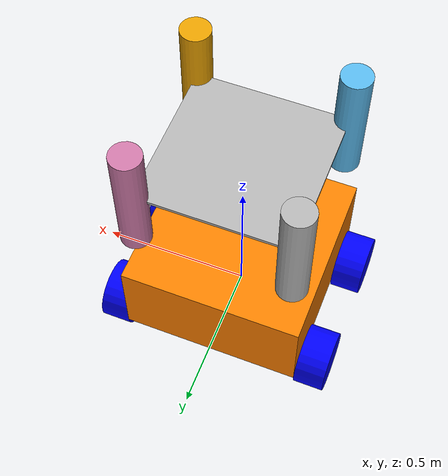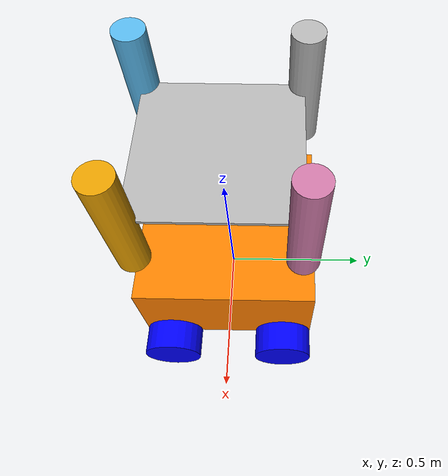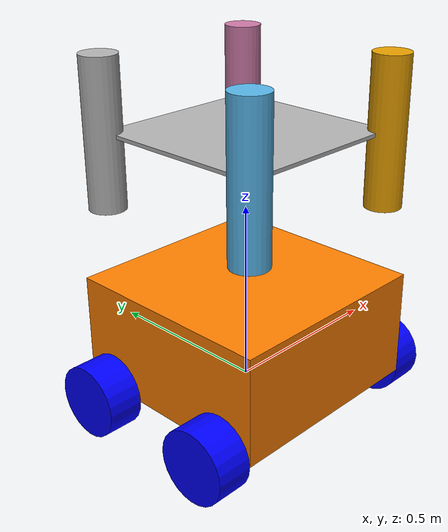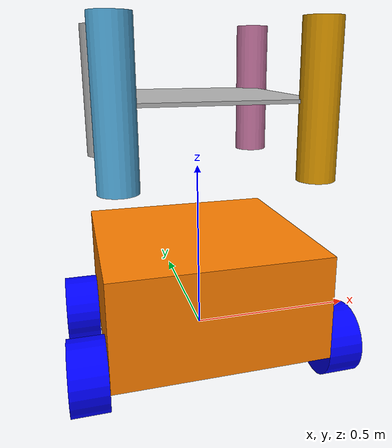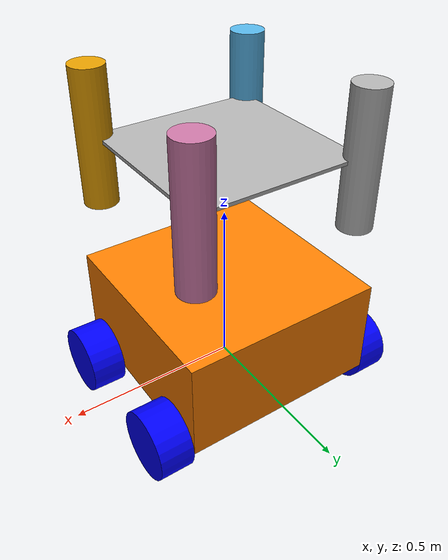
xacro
<?xml version="1.0"?>
<robot name="durian_robot" xmlns:xacro="http://www.ros.org/wiki/xacro">

    <link name="base_link">
        <origin xyz="0 0 0" rpy="0 0 0"/>
        <inertial>
            <origin xyz="0 0 0.15" rpy="0 0 0"/>
            <mass value="1.0"/>
        <inertia
            ixx="0.01" ixy="0.0" ixz="0.0"
            iyy="0.01" iyz="0.0"
            izz="0.01"/>
        </inertial>
        <collision name="collision">
            <origin xyz="0 0 0.15" rpy="0 0 0"/>
            <geometry>
                <box size="0.6 0.6 0.3"/>
            </geometry>
        </collision>
        <visual name="visual">
            <origin xyz="0 0 0.15" rpy="0 0 0"/>
            <geometry>
                <box size="0.6 0.6 0.3"/>
            </geometry>
        <material name="Orange">
            <color rgba="1.0 0.5 0 1.0"/>
        </material>
        </visual>
    </link>

    <joint name="type_joint_1" type="continuous">
        <parent link="base_link"/>
        <child link="type_link_1"/>
        <origin xyz="0.35 0.2 0" rpy="0 1.57 0"/>
        <limit effort="10.0" velocity="2.0" lower="-3.14" upper="3.14"/>
    </joint>

    <link name="type_link_1">
      <visual>
        <origin xyz="0 0 0" rpy="0 0 0"/>
        <geometry>
            <cylinder radius="0.1" length="0.1"/>
        </geometry>
        <material name="Blue">
          <color rgba="0.0 0.0 1.0 1.0"/>
        </material>
      </visual>
      <collision>
        <origin xyz="0 0 0" rpy="0 0 0"/>
        <geometry>
            <cylinder radius="0.1" length="0.1"/>
        </geometry>
      </collision>
      <inertial>
        <origin xyz="0 0 0" rpy="0 0 0"/>
        <mass value="0.2"/>
        <inertia ixx="10.0" ixy="0.0" ixz="0.0" iyy="10.0" iyz="0.0" izz="10.0"/>
      </inertial>
    </link>

    <joint name="type_joint_2" type="continuous">
        <parent link="base_link"/>
        <child link="type_link_2"/>
        <origin xyz="-0.35 0.2 0" rpy="0 1.57 0"/>
        <limit effort="10.0" velocity="2.0" lower="-3.14" upper="3.14"/>
    </joint>

    <link name="type_link_2">
      <visual>
        <origin xyz="0 0 0" rpy="0 0 0"/>
        <geometry>
            <cylinder radius="0.1" length="0.1"/>
        </geometry>
        <material name="Blue">
          <color rgba="0.0 0.0 1.0 1.0"/>
        </material>
      </visual>
      <collision>
        <origin xyz="0 0 0" rpy="0 0 0"/>
        <geometry>
            <cylinder radius="0.1" length="0.1"/>
        </geometry>
      </collision>
      <inertial>
        <origin xyz="0 0 0" rpy="0 0 0"/>
        <mass value="0.2"/>
        <inertia ixx="10.0" ixy="0.0" ixz="0.0" iyy="10.0" iyz="0.0" izz="10.0"/>
      </inertial>
    </link>

    <joint name="type_joint_3" type="continuous">
        <parent link="base_link"/>
        <child link="type_link_3"/>
        <origin xyz="0.35 -0.2 0" rpy="0 1.57 0"/>
        <limit effort="10.0" velocity="2.0" lower="-3.14" upper="3.14"/>
    </joint>

    <link name="type_link_3">
      <visual>
        <origin xyz="0 0 0" rpy="0 0 0"/>
        <geometry>
            <cylinder radius="0.1" length="0.1"/>
        </geometry>
        <material name="Blue">
          <color rgba="0.0 0.0 1.0 1.0"/>
        </material>
      </visual>
      <collision>
        <origin xyz="0 0 0" rpy="0 0 0"/>
        <geometry>
            <cylinder radius="0.1" length="0.1"/>
        </geometry>
      </collision>
      <inertial>
        <origin xyz="0 0 0" rpy="0 0 0"/>
        <mass value="0.2"/>
        <inertia ixx="10.0" ixy="0.0" ixz="0.0" iyy="10.0" iyz="0.0" izz="10.0"/>
      </inertial>
    </link>

    <joint name="type_joint_4" type="continuous">
        <parent link="base_link"/>
        <child link="type_link_4"/>
        <origin xyz="-0.35 -0.2 0" rpy="0 1.57 0"/>
        <limit effort="10.0" velocity="2.0" lower="-3.14" upper="3.14"/>
    </joint>

    <link name="type_link_4">
      <visual>
        <origin xyz="0 0 0" rpy="0 0 0"/>
        <geometry>
            <cylinder radius="0.1" length="0.1"/>
        </geometry>
        <material name="Blue">
          <color rgba="0.0 0.0 1.0 1.0"/>
        </material>
      </visual>
      <collision>
        <origin xyz="0 0 0" rpy="0 0 0"/>
        <geometry>
            <cylinder radius="0.1" length="0.1"/>
        </geometry>
      </collision>
      <inertial>
        <origin xyz="0 0 0" rpy="0 0 0"/>
        <mass value="0.2"/>
        <inertia ixx="10.0" ixy="0.0" ixz="0.0" iyy="10.0" iyz="0.0" izz="10.0"/>
      </inertial>
    </link>

    <!-- Prismatic joints from base_link to damping links -->
    <joint name="damping_joint_1" type="prismatic">
        <parent link="base_link"/>
        <child link="damping_link_1"/>
        <origin xyz="0.25 0.25 0.7" rpy="0 0 0"/>
        <axis xyz="0 0 1"/>
        <limit effort="10.0" velocity="2.0" lower="-0.1" upper="0.1"/>
        <dynamics damping="2000.0" spring_stiffness="2000.0"/>
    </joint>

    <joint name="damping_joint_2" type="prismatic">
        <parent link="base_link"/>
        <child link="damping_link_2"/>
        <origin xyz="-0.25 0.25 0.7" rpy="0 0 0"/>
        <axis xyz="0 0 1"/>
        <limit effort="10.0" velocity="2.0" lower="-0.1" upper="0.1"/>
        <dynamics damping="2000.0" spring_stiffness="2000.0"/>
    </joint>

    <joint name="damping_joint_3" type="prismatic">
        <parent link="base_link"/>
        <child link="damping_link_3"/>
        <origin xyz="0.25 -0.25 0.7" rpy="0 0 0"/>
        <axis xyz="0 0 1"/>
        <limit effort="10.0" velocity="2.0" lower="-0.1" upper="0.1"/>
        <dynamics damping="2000.0" spring_stiffness="2000.0"/>
    </joint>

    <joint name="damping_joint_4" type="prismatic">
        <parent link="base_link"/>
        <child link="damping_link_4"/>
        <origin xyz="-0.25 -0.25 0.7" rpy="0 0 0"/>
        <axis xyz="0 0 1"/>
        <limit effort="10.0" velocity="2.0" lower="-0.1" upper="0.1"/>
        <dynamics damping="2000.0" spring_stiffness="2000.0"/>
    </joint>

    <!-- Fixed joints from each damper to plate_link -->
    <joint name="plate_to_damper" type="prismatic">
        <parent link="base_link"/>
        <child link="plate_link"/>
        <axis xyz="0 0 1"/>
        <origin xyz="0 0 0.7" rpy="0 0 0"/>
        <limit effort="10.0" velocity="2.0" lower="-0.01" upper="0.1"/>
        <dynamics damping="2000.0" spring_stiffness="2000.0"/>
    </joint>

    <!-- Plate link (shared between all dampers) -->
    <link name="plate_link">
        <visual>
            <origin xyz="0 0 0" rpy="0 0 0"/>
            <geometry>
            <box size="0.5 0.5 0.01"/>
            </geometry>
            <material name="Gray">
            <color rgba="0.7 0.7 0.7 1"/>
            </material>
        </visual>
        <collision>
            <origin xyz="0 0 0" rpy="0 0 0"/>
            <geometry>
            <box size="0.5 0.5 0.01"/>
            </geometry>
        </collision>
        <inertial>
            <origin xyz="0 0 0" rpy="0 0 0"/>
            <mass value="0.1"/>
            <inertia ixx="0.01" ixy="0.0" ixz="0.0" iyy="0.01" iyz="0.0" izz="0.01"/>
        </inertial>
    </link>

    <!-- Damping links -->
    <link name="damping_link_1">
        <visual>
            <origin xyz="0 0 0" rpy="0 0 0"/>
            <geometry>
            <cylinder radius="0.05" length="0.4"/>
            </geometry>
        </visual>
        <collision>
            <origin xyz="0 0 0" rpy="0 0 0"/>
            <geometry>
            <cylinder radius="0.05" length="0.4"/>
            </geometry>
        </collision>
        <inertial>
            <origin xyz="0 0 0" rpy="0 0 0"/>
            <mass value="0.05"/>
            <inertia ixx="0.001" ixy="0" ixz="0" iyy="0.001" iyz="0" izz="0.001"/>
        </inertial>
    </link>

    <link name="damping_link_2">
        <visual>
            <origin xyz="0 0 0" rpy="0 0 0"/>
            <geometry>
            <cylinder radius="0.05" length="0.4"/>
            </geometry>
        </visual>
        <collision>
            <origin xyz="0 0 0" rpy="0 0 0"/>
            <geometry>
            <cylinder radius="0.05" length="0.4"/>
            </geometry>
        </collision>
        <inertial>
            <origin xyz="0 0 0" rpy="0 0 0"/>
            <mass value="0.05"/>
            <inertia ixx="0.001" ixy="0" ixz="0" iyy="0.001" iyz="0" izz="0.001"/>
        </inertial>
    </link>

    <link name="damping_link_3">
        <visual>
            <origin xyz="0 0 0" rpy="0 0 0"/>
            <geometry>
            <cylinder radius="0.05" length="0.4"/>
            </geometry>
        </visual>
        <collision>
            <origin xyz="0 0 0" rpy="0 0 0"/>
            <geometry>
            <cylinder radius="0.05" length="0.4"/>
            </geometry>
        </collision>
        <inertial>
            <origin xyz="0 0 0" rpy="0 0 0"/>
            <mass value="0.05"/>
            <inertia ixx="0.001" ixy="0" ixz="0" iyy="0.001" iyz="0" izz="0.001"/>
        </inertial>
    </link>

    <link name="damping_link_4">
        <visual>
            <origin xyz="0 0 0" rpy="0 0 0"/>
            <geometry>
            <cylinder radius="0.05" length="0.4"/>
            </geometry>
        </visual>
        <collision>
            <origin xyz="0 0 0" rpy="0 0 0"/>
            <geometry>
            <cylinder radius="0.05" length="0.4"/>
            </geometry>
        </collision>
        <inertial>
            <origin xyz="0 0 0" rpy="0 0 0"/>
            <mass value="0.05"/>
            <inertia ixx="0.001" ixy="0" ixz="0" iyy="0.001" iyz="0" izz="0.001"/>
        </inertial>
    </link>

    <gazebo reference="plate_link">
        <selfCollide>true</selfCollide>
    </gazebo>
    <gazebo reference="damping_link_1">
        <selfCollide>true</selfCollide>
    </gazebo>
    <gazebo reference="damping_link_2">
        <selfCollide>true</selfCollide>
    </gazebo>
    <gazebo reference="damping_link_3">
        <selfCollide>true</selfCollide>
    </gazebo>
    <gazebo reference="damping_link_4">
        <selfCollide>true</selfCollide>
    </gazebo>

</robot>
